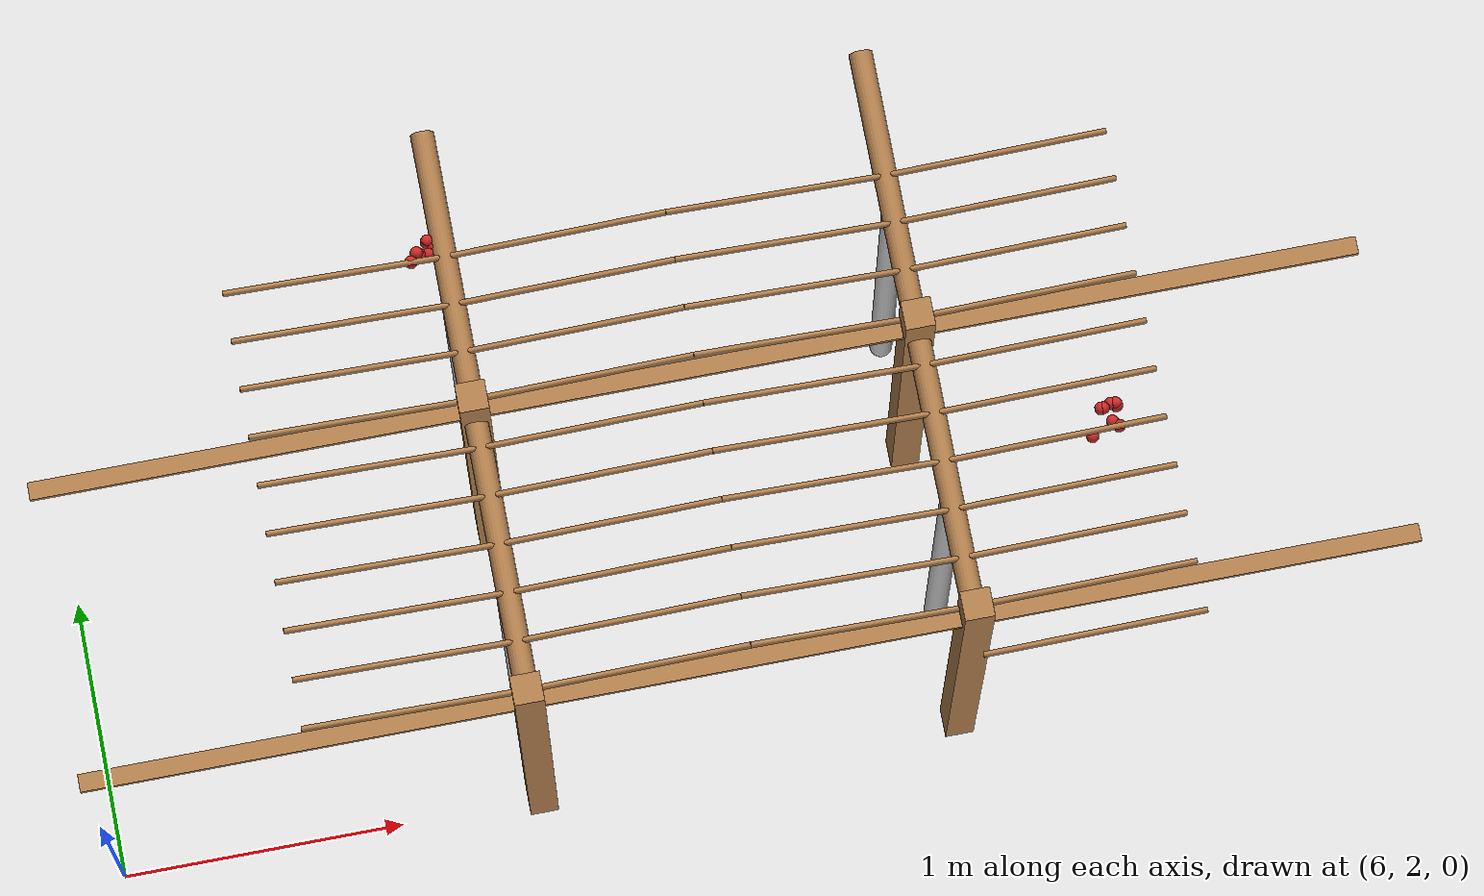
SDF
<sdf version="1.4">
 <model name="pergola">
  <include><name>post_57</name><pose>7.5 2.0 0 0 0 0</pose><uri>model://post</uri></include>
  <include><name>post_58</name><pose>7.5 3.0 0 0 0 0</pose><uri>model://post</uri></include>
  <include><name>post_68</name><pose>9.0 2.0 0 0 0 0</pose><uri>model://post</uri></include>
  <include><name>post_69</name><pose>9.0 3.0 0 0 0 0</pose><uri>model://post</uri></include>
  <link name="beam_46">
   <pose>6.75 2.0 1.81 0 0 0</pose>
   <collision name="collision"><geometry><box><size>1.5 0.06 0.02</size></box></geometry></collision>
   <visual name="visual">
    <geometry><box><size>1.5 0.06 0.02</size></box></geometry>
    <material><script><name>Gazebo/Wood</name></script></material>
   </visual>
   <inertial>
    <mass>5</mass>
    <inertia>
     <ixx>0.0016666666666666668</ixx>
     <ixy>0.0</ixy>
     <ixz>0.0</ixz>
     <iyy>0.9390000000000001</iyy>
     <iyz>0.0</iyz>
     <izz>0.9376666666666665</izz>
    </inertia>
   </inertial>
  </link>
  <link name="beam_47">
   <pose>6.75 3.0 1.81 0 0 0</pose>
   <collision name="collision"><geometry><box><size>1.5 0.06 0.02</size></box></geometry></collision>
   <visual name="visual">
    <geometry><box><size>1.5 0.06 0.02</size></box></geometry>
    <material><script><name>Gazebo/Wood</name></script></material>
   </visual>
   <inertial>
    <mass>5</mass>
    <inertia>
     <ixx>0.0016666666666666668</ixx>
     <ixy>0.0</ixy>
     <ixz>0.0</ixz>
     <iyy>0.9390000000000001</iyy>
     <iyz>0.0</iyz>
     <izz>0.9376666666666665</izz>
    </inertia>
   </inertial>
  </link>
  <link name="beam_57">
   <pose>8.25 2.0 1.81 0 0 0</pose>
   <collision name="collision"><geometry><box><size>1.5 0.06 0.02</size></box></geometry></collision>
   <visual name="visual">
    <geometry><box><size>1.5 0.06 0.02</size></box></geometry>
    <material><script><name>Gazebo/Wood</name></script></material>
   </visual>
   <inertial>
    <mass>5</mass>
    <inertia>
     <ixx>0.0016666666666666668</ixx>
     <ixy>0.0</ixy>
     <ixz>0.0</ixz>
     <iyy>0.9390000000000001</iyy>
     <iyz>0.0</iyz>
     <izz>0.9376666666666665</izz>
    </inertia>
   </inertial>
  </link>
  <link name="beam_58">
   <pose>8.25 3.0 1.81 0 0 0</pose>
   <collision name="collision"><geometry><box><size>1.5 0.06 0.02</size></box></geometry></collision>
   <visual name="visual">
    <geometry><box><size>1.5 0.06 0.02</size></box></geometry>
    <material><script><name>Gazebo/Wood</name></script></material>
   </visual>
   <inertial>
    <mass>5</mass>
    <inertia>
     <ixx>0.0016666666666666668</ixx>
     <ixy>0.0</ixy>
     <ixz>0.0</ixz>
     <iyy>0.9390000000000001</iyy>
     <iyz>0.0</iyz>
     <izz>0.9376666666666665</izz>
    </inertia>
   </inertial>
  </link>
  <link name="beam_68">
   <pose>9.75 2.0 1.81 0 0 0</pose>
   <collision name="collision"><geometry><box><size>1.5 0.06 0.02</size></box></geometry></collision>
   <visual name="visual">
    <geometry><box><size>1.5 0.06 0.02</size></box></geometry>
    <material><script><name>Gazebo/Wood</name></script></material>
   </visual>
   <inertial>
    <mass>5</mass>
    <inertia>
     <ixx>0.0016666666666666668</ixx>
     <ixy>0.0</ixy>
     <ixz>0.0</ixz>
     <iyy>0.9390000000000001</iyy>
     <iyz>0.0</iyz>
     <izz>0.9376666666666665</izz>
    </inertia>
   </inertial>
  </link>
  <link name="beam_69">
   <pose>9.75 3.0 1.81 0 0 0</pose>
   <collision name="collision"><geometry><box><size>1.5 0.06 0.02</size></box></geometry></collision>
   <visual name="visual">
    <geometry><box><size>1.5 0.06 0.02</size></box></geometry>
    <material><script><name>Gazebo/Wood</name></script></material>
   </visual>
   <inertial>
    <mass>5</mass>
    <inertia>
     <ixx>0.0016666666666666668</ixx>
     <ixy>0.0</ixy>
     <ixz>0.0</ixz>
     <iyy>0.9390000000000001</iyy>
     <iyz>0.0</iyz>
     <izz>0.9376666666666665</izz>
    </inertia>
   </inertial>
  </link>
  <include><name>tree_52</name><pose>7.5 2.4 0 0 0 0</pose><uri>model://tree_trunk</uri></include>
  <include><name>tree_53</name><pose>7.5 3.4 0 0 0 0</pose><uri>model://tree_trunk</uri></include>
  <include><name>tree_62</name><pose>9.0 2.4 0 0 0 0</pose><uri>model://tree_trunk</uri></include>
  <include><name>tree_63</name><pose>9.0 3.4 0 0 0 0</pose><uri>model://tree_trunk</uri></include>
  <link name="baseBranch_52">
   <pose>7.5 2.5 1.8 1.5707963267948966 0 0</pose>
   <collision name="collision">
    <geometry><cylinder><radius>0.04</radius><length>0.94</length></cylinder></geometry>
   </collision>
   <visual name="visual">
    <geometry><cylinder><radius>0.04</radius><length>0.94</length></cylinder></geometry>
    <material><script><name>Gazebo/WoodFloor</name></script></material>
   </visual>
   <inertial>
    <mass>10</mass>
    <inertia>
     <ixx>0.7403333333333334</ixx>
     <ixy>0.0</ixy>
     <ixz>0.0</ixz>
     <iyy>0.7403333333333334</iyy>
     <iyz>0.0</iyz>
     <izz>0.008</izz>
    </inertia>
   </inertial>
  </link>
  <link name="baseBranch_53">
   <pose>7.5 3.5 1.8 1.5707963267948966 0 0</pose>
   <collision name="collision">
    <geometry><cylinder><radius>0.04</radius><length>0.94</length></cylinder></geometry>
   </collision>
   <visual name="visual">
    <geometry><cylinder><radius>0.04</radius><length>0.94</length></cylinder></geometry>
    <material><script><name>Gazebo/WoodFloor</name></script></material>
   </visual>
   <inertial>
    <mass>10</mass>
    <inertia>
     <ixx>0.7403333333333334</ixx>
     <ixy>0.0</ixy>
     <ixz>0.0</ixz>
     <iyy>0.7403333333333334</iyy>
     <iyz>0.0</iyz>
     <izz>0.008</izz>
    </inertia>
   </inertial>
  </link>
  <link name="baseBranch_62">
   <pose>9.0 2.5 1.8 1.5707963267948966 0 0</pose>
   <collision name="collision">
    <geometry><cylinder><radius>0.04</radius><length>0.94</length></cylinder></geometry>
   </collision>
   <visual name="visual">
    <geometry><cylinder><radius>0.04</radius><length>0.94</length></cylinder></geometry>
    <material><script><name>Gazebo/WoodFloor</name></script></material>
   </visual>
   <inertial>
    <mass>10</mass>
    <inertia>
     <ixx>0.7403333333333334</ixx>
     <ixy>0.0</ixy>
     <ixz>0.0</ixz>
     <iyy>0.7403333333333334</iyy>
     <iyz>0.0</iyz>
     <izz>0.008</izz>
    </inertia>
   </inertial>
  </link>
  <link name="baseBranch_63">
   <pose>9.0 3.5 1.8 1.5707963267948966 0 0</pose>
   <collision name="collision">
    <geometry><cylinder><radius>0.04</radius><length>0.94</length></cylinder></geometry>
   </collision>
   <visual name="visual">
    <geometry><cylinder><radius>0.04</radius><length>0.94</length></cylinder></geometry>
    <material><script><name>Gazebo/WoodFloor</name></script></material>
   </visual>
   <inertial>
    <mass>10</mass>
    <inertia>
     <ixx>0.7403333333333334</ixx>
     <ixy>0.0</ixy>
     <ixz>0.0</ixz>
     <iyy>0.7403333333333334</iyy>
     <iyz>0.0</iyz>
     <izz>0.008</izz>
    </inertia>
   </inertial>
  </link>
  <link name="vine_505">
   <pose>7.125 2.03 1.85 0 -1.5042281630190728 0</pose>
   <collision name="collision">
    <geometry><cylinder><radius>0.01</radius><length>0.7516648189186453</length></cylinder></geometry>
   </collision>
   <visual name="visual">
    <geometry><cylinder><radius>0.01</radius><length>0.7516648189186453</length></cylinder></geometry>
    <material><script><name>Gazebo/WoodFloor</name></script></material>
   </visual>
   <inertial>
    <mass>5</mass>
    <inertia>
     <ixx>0.23554166666666657</ixx>
     <ixy>0.0</ixy>
     <ixz>0.0</ixz>
     <iyy>0.23554166666666657</iyy>
     <iyz>0.0</iyz>
     <izz>0.00025</izz>
    </inertia>
   </inertial>
  </link>
  <link name="vine_507">
   <pose>7.125 2.1966666666666663 1.85 0 -1.5042281630190728 0</pose>
   <collision name="collision">
    <geometry><cylinder><radius>0.01</radius><length>0.7516648189186453</length></cylinder></geometry>
   </collision>
   <visual name="visual">
    <geometry><cylinder><radius>0.01</radius><length>0.7516648189186453</length></cylinder></geometry>
    <material><script><name>Gazebo/WoodFloor</name></script></material>
   </visual>
   <inertial>
    <mass>5</mass>
    <inertia>
     <ixx>0.23554166666666657</ixx>
     <ixy>0.0</ixy>
     <ixz>0.0</ixz>
     <iyy>0.23554166666666657</iyy>
     <iyz>0.0</iyz>
     <izz>0.00025</izz>
    </inertia>
   </inertial>
  </link>
  <link name="vine_509">
   <pose>7.125 2.363333333333333 1.85 0 -1.5042281630190728 0</pose>
   <collision name="collision">
    <geometry><cylinder><radius>0.01</radius><length>0.7516648189186453</length></cylinder></geometry>
   </collision>
   <visual name="visual">
    <geometry><cylinder><radius>0.01</radius><length>0.7516648189186453</length></cylinder></geometry>
    <material><script><name>Gazebo/WoodFloor</name></script></material>
   </visual>
   <inertial>
    <mass>5</mass>
    <inertia>
     <ixx>0.23554166666666657</ixx>
     <ixy>0.0</ixy>
     <ixz>0.0</ixz>
     <iyy>0.23554166666666657</iyy>
     <iyz>0.0</iyz>
     <izz>0.00025</izz>
    </inertia>
   </inertial>
  </link>
  <link name="vine_511">
   <pose>7.125 2.53 1.85 0 -1.5042281630190728 0</pose>
   <collision name="collision">
    <geometry><cylinder><radius>0.01</radius><length>0.7516648189186453</length></cylinder></geometry>
   </collision>
   <visual name="visual">
    <geometry><cylinder><radius>0.01</radius><length>0.7516648189186453</length></cylinder></geometry>
    <material><script><name>Gazebo/WoodFloor</name></script></material>
   </visual>
   <inertial>
    <mass>5</mass>
    <inertia>
     <ixx>0.23554166666666657</ixx>
     <ixy>0.0</ixy>
     <ixz>0.0</ixz>
     <iyy>0.23554166666666657</iyy>
     <iyz>0.0</iyz>
     <izz>0.00025</izz>
    </inertia>
   </inertial>
  </link>
  <link name="vine_513">
   <pose>7.125 2.6966666666666663 1.85 0 -1.5042281630190728 0</pose>
   <collision name="collision">
    <geometry><cylinder><radius>0.01</radius><length>0.7516648189186453</length></cylinder></geometry>
   </collision>
   <visual name="visual">
    <geometry><cylinder><radius>0.01</radius><length>0.7516648189186453</length></cylinder></geometry>
    <material><script><name>Gazebo/WoodFloor</name></script></material>
   </visual>
   <inertial>
    <mass>5</mass>
    <inertia>
     <ixx>0.23554166666666657</ixx>
     <ixy>0.0</ixy>
     <ixz>0.0</ixz>
     <iyy>0.23554166666666657</iyy>
     <iyz>0.0</iyz>
     <izz>0.00025</izz>
    </inertia>
   </inertial>
  </link>
  <link name="vine_515">
   <pose>7.125 2.863333333333333 1.85 0 -1.5042281630190728 0</pose>
   <collision name="collision">
    <geometry><cylinder><radius>0.01</radius><length>0.7516648189186453</length></cylinder></geometry>
   </collision>
   <visual name="visual">
    <geometry><cylinder><radius>0.01</radius><length>0.7516648189186453</length></cylinder></geometry>
    <material><script><name>Gazebo/WoodFloor</name></script></material>
   </visual>
   <inertial>
    <mass>5</mass>
    <inertia>
     <ixx>0.23554166666666657</ixx>
     <ixy>0.0</ixy>
     <ixz>0.0</ixz>
     <iyy>0.23554166666666657</iyy>
     <iyz>0.0</iyz>
     <izz>0.00025</izz>
    </inertia>
   </inertial>
  </link>
  <link name="vine_517">
   <pose>7.125 3.03 1.85 0 -1.5042281630190728 0</pose>
   <collision name="collision">
    <geometry><cylinder><radius>0.01</radius><length>0.7516648189186453</length></cylinder></geometry>
   </collision>
   <visual name="visual">
    <geometry><cylinder><radius>0.01</radius><length>0.7516648189186453</length></cylinder></geometry>
    <material><script><name>Gazebo/WoodFloor</name></script></material>
   </visual>
   <inertial>
    <mass>5</mass>
    <inertia>
     <ixx>0.23554166666666657</ixx>
     <ixy>0.0</ixy>
     <ixz>0.0</ixz>
     <iyy>0.23554166666666657</iyy>
     <iyz>0.0</iyz>
     <izz>0.00025</izz>
    </inertia>
   </inertial>
  </link>
  <link name="vine_519">
   <pose>7.125 3.1966666666666663 1.85 0 -1.5042281630190728 0</pose>
   <collision name="collision">
    <geometry><cylinder><radius>0.01</radius><length>0.7516648189186453</length></cylinder></geometry>
   </collision>
   <visual name="visual">
    <geometry><cylinder><radius>0.01</radius><length>0.7516648189186453</length></cylinder></geometry>
    <material><script><name>Gazebo/WoodFloor</name></script></material>
   </visual>
   <inertial>
    <mass>5</mass>
    <inertia>
     <ixx>0.23554166666666657</ixx>
     <ixy>0.0</ixy>
     <ixz>0.0</ixz>
     <iyy>0.23554166666666657</iyy>
     <iyz>0.0</iyz>
     <izz>0.00025</izz>
    </inertia>
   </inertial>
  </link>
  <link name="vine_521">
   <pose>7.125 3.363333333333333 1.85 0 -1.5042281630190728 0</pose>
   <collision name="collision">
    <geometry><cylinder><radius>0.01</radius><length>0.7516648189186453</length></cylinder></geometry>
   </collision>
   <visual name="visual">
    <geometry><cylinder><radius>0.01</radius><length>0.7516648189186453</length></cylinder></geometry>
    <material><script><name>Gazebo/WoodFloor</name></script></material>
   </visual>
   <inertial>
    <mass>5</mass>
    <inertia>
     <ixx>0.23554166666666657</ixx>
     <ixy>0.0</ixy>
     <ixz>0.0</ixz>
     <iyy>0.23554166666666657</iyy>
     <iyz>0.0</iyz>
     <izz>0.00025</izz>
    </inertia>
   </inertial>
  </link>
  <link name="vine_523">
   <pose>7.125 3.53 1.85 0 -1.5042281630190728 0</pose>
   <collision name="collision">
    <geometry><cylinder><radius>0.01</radius><length>0.7516648189186453</length></cylinder></geometry>
   </collision>
   <visual name="visual">
    <geometry><cylinder><radius>0.01</radius><length>0.7516648189186453</length></cylinder></geometry>
    <material><script><name>Gazebo/WoodFloor</name></script></material>
   </visual>
   <inertial>
    <mass>5</mass>
    <inertia>
     <ixx>0.23554166666666657</ixx>
     <ixy>0.0</ixy>
     <ixz>0.0</ixz>
     <iyy>0.23554166666666657</iyy>
     <iyz>0.0</iyz>
     <izz>0.00025</izz>
    </inertia>
   </inertial>
  </link>
  <link name="vine_624">
   <pose>7.875 2.03 1.85 0 1.5042281630190728 0</pose>
   <collision name="collision">
    <geometry><cylinder><radius>0.01</radius><length>0.7516648189186453</length></cylinder></geometry>
   </collision>
   <visual name="visual">
    <geometry><cylinder><radius>0.01</radius><length>0.7516648189186453</length></cylinder></geometry>
    <material><script><name>Gazebo/WoodFloor</name></script></material>
   </visual>
   <inertial>
    <mass>5</mass>
    <inertia>
     <ixx>0.23554166666666657</ixx>
     <ixy>0.0</ixy>
     <ixz>0.0</ixz>
     <iyy>0.23554166666666657</iyy>
     <iyz>0.0</iyz>
     <izz>0.00025</izz>
    </inertia>
   </inertial>
  </link>
  <link name="vine_625">
   <pose>8.625 2.03 1.85 0 -1.5042281630190728 0</pose>
   <collision name="collision">
    <geometry><cylinder><radius>0.01</radius><length>0.7516648189186453</length></cylinder></geometry>
   </collision>
   <visual name="visual">
    <geometry><cylinder><radius>0.01</radius><length>0.7516648189186453</length></cylinder></geometry>
    <material><script><name>Gazebo/WoodFloor</name></script></material>
   </visual>
   <inertial>
    <mass>5</mass>
    <inertia>
     <ixx>0.23554166666666657</ixx>
     <ixy>0.0</ixy>
     <ixz>0.0</ixz>
     <iyy>0.23554166666666657</iyy>
     <iyz>0.0</iyz>
     <izz>0.00025</izz>
    </inertia>
   </inertial>
  </link>
  <link name="vine_626">
   <pose>7.875 2.1966666666666663 1.85 0 1.5042281630190728 0</pose>
   <collision name="collision">
    <geometry><cylinder><radius>0.01</radius><length>0.7516648189186453</length></cylinder></geometry>
   </collision>
   <visual name="visual">
    <geometry><cylinder><radius>0.01</radius><length>0.7516648189186453</length></cylinder></geometry>
    <material><script><name>Gazebo/WoodFloor</name></script></material>
   </visual>
   <inertial>
    <mass>5</mass>
    <inertia>
     <ixx>0.23554166666666657</ixx>
     <ixy>0.0</ixy>
     <ixz>0.0</ixz>
     <iyy>0.23554166666666657</iyy>
     <iyz>0.0</iyz>
     <izz>0.00025</izz>
    </inertia>
   </inertial>
  </link>
  <link name="vine_627">
   <pose>8.625 2.1966666666666663 1.85 0 -1.5042281630190728 0</pose>
   <collision name="collision">
    <geometry><cylinder><radius>0.01</radius><length>0.7516648189186453</length></cylinder></geometry>
   </collision>
   <visual name="visual">
    <geometry><cylinder><radius>0.01</radius><length>0.7516648189186453</length></cylinder></geometry>
    <material><script><name>Gazebo/WoodFloor</name></script></material>
   </visual>
   <inertial>
    <mass>5</mass>
    <inertia>
     <ixx>0.23554166666666657</ixx>
     <ixy>0.0</ixy>
     <ixz>0.0</ixz>
     <iyy>0.23554166666666657</iyy>
     <iyz>0.0</iyz>
     <izz>0.00025</izz>
    </inertia>
   </inertial>
  </link>
  <link name="vine_628">
   <pose>7.875 2.363333333333333 1.85 0 1.5042281630190728 0</pose>
   <collision name="collision">
    <geometry><cylinder><radius>0.01</radius><length>0.7516648189186453</length></cylinder></geometry>
   </collision>
   <visual name="visual">
    <geometry><cylinder><radius>0.01</radius><length>0.7516648189186453</length></cylinder></geometry>
    <material><script><name>Gazebo/WoodFloor</name></script></material>
   </visual>
   <inertial>
    <mass>5</mass>
    <inertia>
     <ixx>0.23554166666666657</ixx>
     <ixy>0.0</ixy>
     <ixz>0.0</ixz>
     <iyy>0.23554166666666657</iyy>
     <iyz>0.0</iyz>
     <izz>0.00025</izz>
    </inertia>
   </inertial>
  </link>
  <link name="vine_629">
   <pose>8.625 2.363333333333333 1.85 0 -1.5042281630190728 0</pose>
   <collision name="collision">
    <geometry><cylinder><radius>0.01</radius><length>0.7516648189186453</length></cylinder></geometry>
   </collision>
   <visual name="visual">
    <geometry><cylinder><radius>0.01</radius><length>0.7516648189186453</length></cylinder></geometry>
    <material><script><name>Gazebo/WoodFloor</name></script></material>
   </visual>
   <inertial>
    <mass>5</mass>
    <inertia>
     <ixx>0.23554166666666657</ixx>
     <ixy>0.0</ixy>
     <ixz>0.0</ixz>
     <iyy>0.23554166666666657</iyy>
     <iyz>0.0</iyz>
     <izz>0.00025</izz>
    </inertia>
   </inertial>
  </link>
  <link name="vine_630">
   <pose>7.875 2.53 1.85 0 1.5042281630190728 0</pose>
   <collision name="collision">
    <geometry><cylinder><radius>0.01</radius><length>0.7516648189186453</length></cylinder></geometry>
   </collision>
   <visual name="visual">
    <geometry><cylinder><radius>0.01</radius><length>0.7516648189186453</length></cylinder></geometry>
    <material><script><name>Gazebo/WoodFloor</name></script></material>
   </visual>
   <inertial>
    <mass>5</mass>
    <inertia>
     <ixx>0.23554166666666657</ixx>
     <ixy>0.0</ixy>
     <ixz>0.0</ixz>
     <iyy>0.23554166666666657</iyy>
     <iyz>0.0</iyz>
     <izz>0.00025</izz>
    </inertia>
   </inertial>
  </link>
  <link name="vine_631">
   <pose>8.625 2.53 1.85 0 -1.5042281630190728 0</pose>
   <collision name="collision">
    <geometry><cylinder><radius>0.01</radius><length>0.7516648189186453</length></cylinder></geometry>
   </collision>
   <visual name="visual">
    <geometry><cylinder><radius>0.01</radius><length>0.7516648189186453</length></cylinder></geometry>
    <material><script><name>Gazebo/WoodFloor</name></script></material>
   </visual>
   <inertial>
    <mass>5</mass>
    <inertia>
     <ixx>0.23554166666666657</ixx>
     <ixy>0.0</ixy>
     <ixz>0.0</ixz>
     <iyy>0.23554166666666657</iyy>
     <iyz>0.0</iyz>
     <izz>0.00025</izz>
    </inertia>
   </inertial>
  </link>
  <link name="vine_632">
   <pose>7.875 2.6966666666666663 1.85 0 1.5042281630190728 0</pose>
   <collision name="collision">
    <geometry><cylinder><radius>0.01</radius><length>0.7516648189186453</length></cylinder></geometry>
   </collision>
   <visual name="visual">
    <geometry><cylinder><radius>0.01</radius><length>0.7516648189186453</length></cylinder></geometry>
    <material><script><name>Gazebo/WoodFloor</name></script></material>
   </visual>
   <inertial>
    <mass>5</mass>
    <inertia>
     <ixx>0.23554166666666657</ixx>
     <ixy>0.0</ixy>
     <ixz>0.0</ixz>
     <iyy>0.23554166666666657</iyy>
     <iyz>0.0</iyz>
     <izz>0.00025</izz>
    </inertia>
   </inertial>
  </link>
  <link name="vine_633">
   <pose>8.625 2.6966666666666663 1.85 0 -1.5042281630190728 0</pose>
   <collision name="collision">
    <geometry><cylinder><radius>0.01</radius><length>0.7516648189186453</length></cylinder></geometry>
   </collision>
   <visual name="visual">
    <geometry><cylinder><radius>0.01</radius><length>0.7516648189186453</length></cylinder></geometry>
    <material><script><name>Gazebo/WoodFloor</name></script></material>
   </visual>
   <inertial>
    <mass>5</mass>
    <inertia>
     <ixx>0.23554166666666657</ixx>
     <ixy>0.0</ixy>
     <ixz>0.0</ixz>
     <iyy>0.23554166666666657</iyy>
     <iyz>0.0</iyz>
     <izz>0.00025</izz>
    </inertia>
   </inertial>
  </link>
  <link name="vine_634">
   <pose>7.875 2.863333333333333 1.85 0 1.5042281630190728 0</pose>
   <collision name="collision">
    <geometry><cylinder><radius>0.01</radius><length>0.7516648189186453</length></cylinder></geometry>
   </collision>
   <visual name="visual">
    <geometry><cylinder><radius>0.01</radius><length>0.7516648189186453</length></cylinder></geometry>
    <material><script><name>Gazebo/WoodFloor</name></script></material>
   </visual>
   <inertial>
    <mass>5</mass>
    <inertia>
     <ixx>0.23554166666666657</ixx>
     <ixy>0.0</ixy>
     <ixz>0.0</ixz>
     <iyy>0.23554166666666657</iyy>
     <iyz>0.0</iyz>
     <izz>0.00025</izz>
    </inertia>
   </inertial>
  </link>
  <link name="vine_635">
   <pose>8.625 2.863333333333333 1.85 0 -1.5042281630190728 0</pose>
   <collision name="collision">
    <geometry><cylinder><radius>0.01</radius><length>0.7516648189186453</length></cylinder></geometry>
   </collision>
   <visual name="visual">
    <geometry><cylinder><radius>0.01</radius><length>0.7516648189186453</length></cylinder></geometry>
    <material><script><name>Gazebo/WoodFloor</name></script></material>
   </visual>
   <inertial>
    <mass>5</mass>
    <inertia>
     <ixx>0.23554166666666657</ixx>
     <ixy>0.0</ixy>
     <ixz>0.0</ixz>
     <iyy>0.23554166666666657</iyy>
     <iyz>0.0</iyz>
     <izz>0.00025</izz>
    </inertia>
   </inertial>
  </link>
  <link name="vine_636">
   <pose>7.875 3.03 1.85 0 1.5042281630190728 0</pose>
   <collision name="collision">
    <geometry><cylinder><radius>0.01</radius><length>0.7516648189186453</length></cylinder></geometry>
   </collision>
   <visual name="visual">
    <geometry><cylinder><radius>0.01</radius><length>0.7516648189186453</length></cylinder></geometry>
    <material><script><name>Gazebo/WoodFloor</name></script></material>
   </visual>
   <inertial>
    <mass>5</mass>
    <inertia>
     <ixx>0.23554166666666657</ixx>
     <ixy>0.0</ixy>
     <ixz>0.0</ixz>
     <iyy>0.23554166666666657</iyy>
     <iyz>0.0</iyz>
     <izz>0.00025</izz>
    </inertia>
   </inertial>
  </link>
  <link name="vine_637">
   <pose>8.625 3.03 1.85 0 -1.5042281630190728 0</pose>
   <collision name="collision">
    <geometry><cylinder><radius>0.01</radius><length>0.7516648189186453</length></cylinder></geometry>
   </collision>
   <visual name="visual">
    <geometry><cylinder><radius>0.01</radius><length>0.7516648189186453</length></cylinder></geometry>
    <material><script><name>Gazebo/WoodFloor</name></script></material>
   </visual>
   <inertial>
    <mass>5</mass>
    <inertia>
     <ixx>0.23554166666666657</ixx>
     <ixy>0.0</ixy>
     <ixz>0.0</ixz>
     <iyy>0.23554166666666657</iyy>
     <iyz>0.0</iyz>
     <izz>0.00025</izz>
    </inertia>
   </inertial>
  </link>
  <link name="vine_638">
   <pose>7.875 3.1966666666666663 1.85 0 1.5042281630190728 0</pose>
   <collision name="collision">
    <geometry><cylinder><radius>0.01</radius><length>0.7516648189186453</length></cylinder></geometry>
   </collision>
   <visual name="visual">
    <geometry><cylinder><radius>0.01</radius><length>0.7516648189186453</length></cylinder></geometry>
    <material><script><name>Gazebo/WoodFloor</name></script></material>
   </visual>
   <inertial>
    <mass>5</mass>
    <inertia>
     <ixx>0.23554166666666657</ixx>
     <ixy>0.0</ixy>
     <ixz>0.0</ixz>
     <iyy>0.23554166666666657</iyy>
     <iyz>0.0</iyz>
     <izz>0.00025</izz>
    </inertia>
   </inertial>
  </link>
  <link name="vine_639">
   <pose>8.625 3.1966666666666663 1.85 0 -1.5042281630190728 0</pose>
   <collision name="collision">
    <geometry><cylinder><radius>0.01</radius><length>0.7516648189186453</length></cylinder></geometry>
   </collision>
   <visual name="visual">
    <geometry><cylinder><radius>0.01</radius><length>0.7516648189186453</length></cylinder></geometry>
    <material><script><name>Gazebo/WoodFloor</name></script></material>
   </visual>
   <inertial>
    <mass>5</mass>
    <inertia>
     <ixx>0.23554166666666657</ixx>
     <ixy>0.0</ixy>
     <ixz>0.0</ixz>
     <iyy>0.23554166666666657</iyy>
     <iyz>0.0</iyz>
     <izz>0.00025</izz>
    </inertia>
   </inertial>
  </link>
  <link name="vine_640">
   <pose>7.875 3.363333333333333 1.85 0 1.5042281630190728 0</pose>
   <collision name="collision">
    <geometry><cylinder><radius>0.01</radius><length>0.7516648189186453</length></cylinder></geometry>
   </collision>
   <visual name="visual">
    <geometry><cylinder><radius>0.01</radius><length>0.7516648189186453</length></cylinder></geometry>
    <material><script><name>Gazebo/WoodFloor</name></script></material>
   </visual>
   <inertial>
    <mass>5</mass>
    <inertia>
     <ixx>0.23554166666666657</ixx>
     <ixy>0.0</ixy>
     <ixz>0.0</ixz>
     <iyy>0.23554166666666657</iyy>
     <iyz>0.0</iyz>
     <izz>0.00025</izz>
    </inertia>
   </inertial>
  </link>
  <link name="vine_641">
   <pose>8.625 3.363333333333333 1.85 0 -1.5042281630190728 0</pose>
   <collision name="collision">
    <geometry><cylinder><radius>0.01</radius><length>0.7516648189186453</length></cylinder></geometry>
   </collision>
   <visual name="visual">
    <geometry><cylinder><radius>0.01</radius><length>0.7516648189186453</length></cylinder></geometry>
    <material><script><name>Gazebo/WoodFloor</name></script></material>
   </visual>
   <inertial>
    <mass>5</mass>
    <inertia>
     <ixx>0.23554166666666657</ixx>
     <ixy>0.0</ixy>
     <ixz>0.0</ixz>
     <iyy>0.23554166666666657</iyy>
     <iyz>0.0</iyz>
     <izz>0.00025</izz>
    </inertia>
   </inertial>
  </link>
  <link name="vine_642">
   <pose>7.875 3.53 1.85 0 1.5042281630190728 0</pose>
   <collision name="collision">
    <geometry><cylinder><radius>0.01</radius><length>0.7516648189186453</length></cylinder></geometry>
   </collision>
   <visual name="visual">
    <geometry><cylinder><radius>0.01</radius><length>0.7516648189186453</length></cylinder></geometry>
    <material><script><name>Gazebo/WoodFloor</name></script></material>
   </visual>
   <inertial>
    <mass>5</mass>
    <inertia>
     <ixx>0.23554166666666657</ixx>
     <ixy>0.0</ixy>
     <ixz>0.0</ixz>
     <iyy>0.23554166666666657</iyy>
     <iyz>0.0</iyz>
     <izz>0.00025</izz>
    </inertia>
   </inertial>
  </link>
  <link name="vine_643">
   <pose>8.625 3.53 1.85 0 -1.5042281630190728 0</pose>
   <collision name="collision">
    <geometry><cylinder><radius>0.01</radius><length>0.7516648189186453</length></cylinder></geometry>
   </collision>
   <visual name="visual">
    <geometry><cylinder><radius>0.01</radius><length>0.7516648189186453</length></cylinder></geometry>
    <material><script><name>Gazebo/WoodFloor</name></script></material>
   </visual>
   <inertial>
    <mass>5</mass>
    <inertia>
     <ixx>0.23554166666666657</ixx>
     <ixy>0.0</ixy>
     <ixz>0.0</ixz>
     <iyy>0.23554166666666657</iyy>
     <iyz>0.0</iyz>
     <izz>0.00025</izz>
    </inertia>
   </inertial>
  </link>
  <link name="vine_742">
   <pose>9.375 1.8633333333333333 1.85 0 1.5042281630190728 0</pose>
   <collision name="collision">
    <geometry><cylinder><radius>0.01</radius><length>0.7516648189186453</length></cylinder></geometry>
   </collision>
   <visual name="visual">
    <geometry><cylinder><radius>0.01</radius><length>0.7516648189186453</length></cylinder></geometry>
    <material><script><name>Gazebo/WoodFloor</name></script></material>
   </visual>
   <inertial>
    <mass>5</mass>
    <inertia>
     <ixx>0.23554166666666657</ixx>
     <ixy>0.0</ixy>
     <ixz>0.0</ixz>
     <iyy>0.23554166666666657</iyy>
     <iyz>0.0</iyz>
     <izz>0.00025</izz>
    </inertia>
   </inertial>
  </link>
  <link name="vine_744">
   <pose>9.375 2.03 1.85 0 1.5042281630190728 0</pose>
   <collision name="collision">
    <geometry><cylinder><radius>0.01</radius><length>0.7516648189186453</length></cylinder></geometry>
   </collision>
   <visual name="visual">
    <geometry><cylinder><radius>0.01</radius><length>0.7516648189186453</length></cylinder></geometry>
    <material><script><name>Gazebo/WoodFloor</name></script></material>
   </visual>
   <inertial>
    <mass>5</mass>
    <inertia>
     <ixx>0.23554166666666657</ixx>
     <ixy>0.0</ixy>
     <ixz>0.0</ixz>
     <iyy>0.23554166666666657</iyy>
     <iyz>0.0</iyz>
     <izz>0.00025</izz>
    </inertia>
   </inertial>
  </link>
  <link name="vine_746">
   <pose>9.375 2.1966666666666663 1.85 0 1.5042281630190728 0</pose>
   <collision name="collision">
    <geometry><cylinder><radius>0.01</radius><length>0.7516648189186453</length></cylinder></geometry>
   </collision>
   <visual name="visual">
    <geometry><cylinder><radius>0.01</radius><length>0.7516648189186453</length></cylinder></geometry>
    <material><script><name>Gazebo/WoodFloor</name></script></material>
   </visual>
   <inertial>
    <mass>5</mass>
    <inertia>
     <ixx>0.23554166666666657</ixx>
     <ixy>0.0</ixy>
     <ixz>0.0</ixz>
     <iyy>0.23554166666666657</iyy>
     <iyz>0.0</iyz>
     <izz>0.00025</izz>
    </inertia>
   </inertial>
  </link>
  <link name="vine_748">
   <pose>9.375 2.363333333333333 1.85 0 1.5042281630190728 0</pose>
   <collision name="collision">
    <geometry><cylinder><radius>0.01</radius><length>0.7516648189186453</length></cylinder></geometry>
   </collision>
   <visual name="visual">
    <geometry><cylinder><radius>0.01</radius><length>0.7516648189186453</length></cylinder></geometry>
    <material><script><name>Gazebo/WoodFloor</name></script></material>
   </visual>
   <inertial>
    <mass>5</mass>
    <inertia>
     <ixx>0.23554166666666657</ixx>
     <ixy>0.0</ixy>
     <ixz>0.0</ixz>
     <iyy>0.23554166666666657</iyy>
     <iyz>0.0</iyz>
     <izz>0.00025</izz>
    </inertia>
   </inertial>
  </link>
  <link name="vine_750">
   <pose>9.375 2.53 1.85 0 1.5042281630190728 0</pose>
   <collision name="collision">
    <geometry><cylinder><radius>0.01</radius><length>0.7516648189186453</length></cylinder></geometry>
   </collision>
   <visual name="visual">
    <geometry><cylinder><radius>0.01</radius><length>0.7516648189186453</length></cylinder></geometry>
    <material><script><name>Gazebo/WoodFloor</name></script></material>
   </visual>
   <inertial>
    <mass>5</mass>
    <inertia>
     <ixx>0.23554166666666657</ixx>
     <ixy>0.0</ixy>
     <ixz>0.0</ixz>
     <iyy>0.23554166666666657</iyy>
     <iyz>0.0</iyz>
     <izz>0.00025</izz>
    </inertia>
   </inertial>
  </link>
  <link name="vine_752">
   <pose>9.375 2.6966666666666663 1.85 0 1.5042281630190728 0</pose>
   <collision name="collision">
    <geometry><cylinder><radius>0.01</radius><length>0.7516648189186453</length></cylinder></geometry>
   </collision>
   <visual name="visual">
    <geometry><cylinder><radius>0.01</radius><length>0.7516648189186453</length></cylinder></geometry>
    <material><script><name>Gazebo/WoodFloor</name></script></material>
   </visual>
   <inertial>
    <mass>5</mass>
    <inertia>
     <ixx>0.23554166666666657</ixx>
     <ixy>0.0</ixy>
     <ixz>0.0</ixz>
     <iyy>0.23554166666666657</iyy>
     <iyz>0.0</iyz>
     <izz>0.00025</izz>
    </inertia>
   </inertial>
  </link>
  <link name="vine_754">
   <pose>9.375 2.863333333333333 1.85 0 1.5042281630190728 0</pose>
   <collision name="collision">
    <geometry><cylinder><radius>0.01</radius><length>0.7516648189186453</length></cylinder></geometry>
   </collision>
   <visual name="visual">
    <geometry><cylinder><radius>0.01</radius><length>0.7516648189186453</length></cylinder></geometry>
    <material><script><name>Gazebo/WoodFloor</name></script></material>
   </visual>
   <inertial>
    <mass>5</mass>
    <inertia>
     <ixx>0.23554166666666657</ixx>
     <ixy>0.0</ixy>
     <ixz>0.0</ixz>
     <iyy>0.23554166666666657</iyy>
     <iyz>0.0</iyz>
     <izz>0.00025</izz>
    </inertia>
   </inertial>
  </link>
  <link name="vine_756">
   <pose>9.375 3.03 1.85 0 1.5042281630190728 0</pose>
   <collision name="collision">
    <geometry><cylinder><radius>0.01</radius><length>0.7516648189186453</length></cylinder></geometry>
   </collision>
   <visual name="visual">
    <geometry><cylinder><radius>0.01</radius><length>0.7516648189186453</length></cylinder></geometry>
    <material><script><name>Gazebo/WoodFloor</name></script></material>
   </visual>
   <inertial>
    <mass>5</mass>
    <inertia>
     <ixx>0.23554166666666657</ixx>
     <ixy>0.0</ixy>
     <ixz>0.0</ixz>
     <iyy>0.23554166666666657</iyy>
     <iyz>0.0</iyz>
     <izz>0.00025</izz>
    </inertia>
   </inertial>
  </link>
  <link name="vine_758">
   <pose>9.375 3.1966666666666663 1.85 0 1.5042281630190728 0</pose>
   <collision name="collision">
    <geometry><cylinder><radius>0.01</radius><length>0.7516648189186453</length></cylinder></geometry>
   </collision>
   <visual name="visual">
    <geometry><cylinder><radius>0.01</radius><length>0.7516648189186453</length></cylinder></geometry>
    <material><script><name>Gazebo/WoodFloor</name></script></material>
   </visual>
   <inertial>
    <mass>5</mass>
    <inertia>
     <ixx>0.23554166666666657</ixx>
     <ixy>0.0</ixy>
     <ixz>0.0</ixz>
     <iyy>0.23554166666666657</iyy>
     <iyz>0.0</iyz>
     <izz>0.00025</izz>
    </inertia>
   </inertial>
  </link>
  <link name="vine_760">
   <pose>9.375 3.363333333333333 1.85 0 1.5042281630190728 0</pose>
   <collision name="collision">
    <geometry><cylinder><radius>0.01</radius><length>0.7516648189186453</length></cylinder></geometry>
   </collision>
   <visual name="visual">
    <geometry><cylinder><radius>0.01</radius><length>0.7516648189186453</length></cylinder></geometry>
    <material><script><name>Gazebo/WoodFloor</name></script></material>
   </visual>
   <inertial>
    <mass>5</mass>
    <inertia>
     <ixx>0.23554166666666657</ixx>
     <ixy>0.0</ixy>
     <ixz>0.0</ixz>
     <iyy>0.23554166666666657</iyy>
     <iyz>0.0</iyz>
     <izz>0.00025</izz>
    </inertia>
   </inertial>
  </link>
  <link name="vine_762">
   <pose>9.375 3.53 1.85 0 1.5042281630190728 0</pose>
   <collision name="collision">
    <geometry><cylinder><radius>0.01</radius><length>0.7516648189186453</length></cylinder></geometry>
   </collision>
   <visual name="visual">
    <geometry><cylinder><radius>0.01</radius><length>0.7516648189186453</length></cylinder></geometry>
    <material><script><name>Gazebo/WoodFloor</name></script></material>
   </visual>
   <inertial>
    <mass>5</mass>
    <inertia>
     <ixx>0.23554166666666657</ixx>
     <ixy>0.0</ixy>
     <ixz>0.0</ixz>
     <iyy>0.23554166666666657</iyy>
     <iyz>0.0</iyz>
     <izz>0.00025</izz>
    </inertia>
   </inertial>
  </link>
  <link name="fruit_12">
   <pose>7.386136675661051 3.534701240528242 1.8203645106738888 0 0 0</pose>
   <collision name="fruit_collision_12"><geometry><sphere><radius>0.022</radius></sphere></geometry></collision>
   <visual name="visual">
    <geometry><sphere><radius>0.022</radius></sphere></geometry>
    <material><script><name>Gazebo/Red</name></script></material>
   </visual>
   <inertial>
    <mass>0.05</mass>
    <inertia>
     <ixx>9.679999999999999e-06</ixx>
     <ixy>0.0</ixy>
     <ixz>0.0</ixz>
     <iyy>9.679999999999999e-06</iyy>
     <iyz>0.0</iyz>
     <izz>9.679999999999999e-06</izz>
    </inertia>
   </inertial>
   <sensor name="fruit_contact_12" type="contact">
    <contact><collision>fruit_collision_12</collision></contact>
   </sensor>
  </link>
  <link name="fruit_46">
   <pose>9.52284216077896 2.568394073349437 1.6092427193461254 0 0 0</pose>
   <collision name="fruit_collision_46"><geometry><sphere><radius>0.022</radius></sphere></geometry></collision>
   <visual name="visual">
    <geometry><sphere><radius>0.022</radius></sphere></geometry>
    <material><script><name>Gazebo/Red</name></script></material>
   </visual>
   <inertial>
    <mass>0.05</mass>
    <inertia>
     <ixx>9.679999999999999e-06</ixx>
     <ixy>0.0</ixy>
     <ixz>0.0</ixz>
     <iyy>9.679999999999999e-06</iyy>
     <iyz>0.0</iyz>
     <izz>9.679999999999999e-06</izz>
    </inertia>
   </inertial>
   <sensor name="fruit_contact_46" type="contact">
    <contact><collision>fruit_collision_46</collision></contact>
   </sensor>
  </link>
  <link name="fruit_202">
   <pose>9.607054291660832 2.6723650815824427 1.5912703115261 0 0 0</pose>
   <collision name="fruit_collision_202"><geometry><sphere><radius>0.022</radius></sphere></geometry></collision>
   <visual name="visual">
    <geometry><sphere><radius>0.022</radius></sphere></geometry>
    <material><script><name>Gazebo/Red</name></script></material>
   </visual>
   <inertial>
    <mass>0.05</mass>
    <inertia>
     <ixx>9.679999999999999e-06</ixx>
     <ixy>0.0</ixy>
     <ixz>0.0</ixz>
     <iyy>9.679999999999999e-06</iyy>
     <iyz>0.0</iyz>
     <izz>9.679999999999999e-06</izz>
    </inertia>
   </inertial>
   <sensor name="fruit_contact_202" type="contact">
    <contact><collision>fruit_collision_202</collision></contact>
   </sensor>
  </link>
  <link name="fruit_203">
   <pose>9.624354592729418 2.662525553296962 1.587330563920645 0 0 0</pose>
   <collision name="fruit_collision_203"><geometry><sphere><radius>0.022</radius></sphere></geometry></collision>
   <visual name="visual">
    <geometry><sphere><radius>0.022</radius></sphere></geometry>
    <material><script><name>Gazebo/Red</name></script></material>
   </visual>
   <inertial>
    <mass>0.05</mass>
    <inertia>
     <ixx>9.679999999999999e-06</ixx>
     <ixy>0.0</ixy>
     <ixz>0.0</ixz>
     <iyy>9.679999999999999e-06</iyy>
     <iyz>0.0</iyz>
     <izz>9.679999999999999e-06</izz>
    </inertia>
   </inertial>
   <sensor name="fruit_contact_203" type="contact">
    <contact><collision>fruit_collision_203</collision></contact>
   </sensor>
  </link>
  <link name="fruit_238">
   <pose>7.413024029709884 3.563214395773613 1.7989855599222393 0 0 0</pose>
   <collision name="fruit_collision_238"><geometry><sphere><radius>0.022</radius></sphere></geometry></collision>
   <visual name="visual">
    <geometry><sphere><radius>0.022</radius></sphere></geometry>
    <material><script><name>Gazebo/Red</name></script></material>
   </visual>
   <inertial>
    <mass>0.05</mass>
    <inertia>
     <ixx>9.679999999999999e-06</ixx>
     <ixy>0.0</ixy>
     <ixz>0.0</ixz>
     <iyy>9.679999999999999e-06</iyy>
     <iyz>0.0</iyz>
     <izz>9.679999999999999e-06</izz>
    </inertia>
   </inertial>
   <sensor name="fruit_contact_238" type="contact">
    <contact><collision>fruit_collision_238</collision></contact>
   </sensor>
  </link>
  <link name="fruit_270">
   <pose>7.418131556457942 3.558812385363637 1.804394027517387 0 0 0</pose>
   <collision name="fruit_collision_270"><geometry><sphere><radius>0.022</radius></sphere></geometry></collision>
   <visual name="visual">
    <geometry><sphere><radius>0.022</radius></sphere></geometry>
    <material><script><name>Gazebo/Red</name></script></material>
   </visual>
   <inertial>
    <mass>0.05</mass>
    <inertia>
     <ixx>9.679999999999999e-06</ixx>
     <ixy>0.0</ixy>
     <ixz>0.0</ixz>
     <iyy>9.679999999999999e-06</iyy>
     <iyz>0.0</iyz>
     <izz>9.679999999999999e-06</izz>
    </inertia>
   </inertial>
   <sensor name="fruit_contact_270" type="contact">
    <contact><collision>fruit_collision_270</collision></contact>
   </sensor>
  </link>
  <link name="fruit_340">
   <pose>9.619497150890364 2.5908582505102578 1.5938866831020033 0 0 0</pose>
   <collision name="fruit_collision_340"><geometry><sphere><radius>0.022</radius></sphere></geometry></collision>
   <visual name="visual">
    <geometry><sphere><radius>0.022</radius></sphere></geometry>
    <material><script><name>Gazebo/Red</name></script></material>
   </visual>
   <inertial>
    <mass>0.05</mass>
    <inertia>
     <ixx>9.679999999999999e-06</ixx>
     <ixy>0.0</ixy>
     <ixz>0.0</ixz>
     <iyy>9.679999999999999e-06</iyy>
     <iyz>0.0</iyz>
     <izz>9.679999999999999e-06</izz>
    </inertia>
   </inertial>
   <sensor name="fruit_contact_340" type="contact">
    <contact><collision>fruit_collision_340</collision></contact>
   </sensor>
  </link>
  <link name="fruit_345">
   <pose>7.44874372042897 3.5973017019494113 1.805332870105782 0 0 0</pose>
   <collision name="fruit_collision_345"><geometry><sphere><radius>0.022</radius></sphere></geometry></collision>
   <visual name="visual">
    <geometry><sphere><radius>0.022</radius></sphere></geometry>
    <material><script><name>Gazebo/Red</name></script></material>
   </visual>
   <inertial>
    <mass>0.05</mass>
    <inertia>
     <ixx>9.679999999999999e-06</ixx>
     <ixy>0.0</ixy>
     <ixz>0.0</ixz>
     <iyy>9.679999999999999e-06</iyy>
     <iyz>0.0</iyz>
     <izz>9.679999999999999e-06</izz>
    </inertia>
   </inertial>
   <sensor name="fruit_contact_345" type="contact">
    <contact><collision>fruit_collision_345</collision></contact>
   </sensor>
  </link>
  <link name="fruit_353">
   <pose>7.451000879043119 3.5997092591495443 1.8091329530128206 0 0 0</pose>
   <collision name="fruit_collision_353"><geometry><sphere><radius>0.022</radius></sphere></geometry></collision>
   <visual name="visual">
    <geometry><sphere><radius>0.022</radius></sphere></geometry>
    <material><script><name>Gazebo/Red</name></script></material>
   </visual>
   <inertial>
    <mass>0.05</mass>
    <inertia>
     <ixx>9.679999999999999e-06</ixx>
     <ixy>0.0</ixy>
     <ixz>0.0</ixz>
     <iyy>9.679999999999999e-06</iyy>
     <iyz>0.0</iyz>
     <izz>9.679999999999999e-06</izz>
    </inertia>
   </inertial>
   <sensor name="fruit_contact_353" type="contact">
    <contact><collision>fruit_collision_353</collision></contact>
   </sensor>
  </link>
  <link name="fruit_354">
   <pose>9.6226532017129 2.669782251874204 1.5941955766544578 0 0 0</pose>
   <collision name="fruit_collision_354"><geometry><sphere><radius>0.022</radius></sphere></geometry></collision>
   <visual name="visual">
    <geometry><sphere><radius>0.022</radius></sphere></geometry>
    <material><script><name>Gazebo/Red</name></script></material>
   </visual>
   <inertial>
    <mass>0.05</mass>
    <inertia>
     <ixx>9.679999999999999e-06</ixx>
     <ixy>0.0</ixy>
     <ixz>0.0</ixz>
     <iyy>9.679999999999999e-06</iyy>
     <iyz>0.0</iyz>
     <izz>9.679999999999999e-06</izz>
    </inertia>
   </inertial>
   <sensor name="fruit_contact_354" type="contact">
    <contact><collision>fruit_collision_354</collision></contact>
   </sensor>
  </link>
  <link name="fruit_379">
   <pose>9.569657152900032 2.6583118715883414 1.6071290751694522 0 0 0</pose>
   <collision name="fruit_collision_379"><geometry><sphere><radius>0.022</radius></sphere></geometry></collision>
   <visual name="visual">
    <geometry><sphere><radius>0.022</radius></sphere></geometry>
    <material><script><name>Gazebo/Red</name></script></material>
   </visual>
   <inertial>
    <mass>0.05</mass>
    <inertia>
     <ixx>9.679999999999999e-06</ixx>
     <ixy>0.0</ixy>
     <ixz>0.0</ixz>
     <iyy>9.679999999999999e-06</iyy>
     <iyz>0.0</iyz>
     <izz>9.679999999999999e-06</izz>
    </inertia>
   </inertial>
   <sensor name="fruit_contact_379" type="contact">
    <contact><collision>fruit_collision_379</collision></contact>
   </sensor>
  </link>
  <link name="fruit_407">
   <pose>7.449388709546371 3.556837431659183 1.8001056821185415 0 0 0</pose>
   <collision name="fruit_collision_407"><geometry><sphere><radius>0.022</radius></sphere></geometry></collision>
   <visual name="visual">
    <geometry><sphere><radius>0.022</radius></sphere></geometry>
    <material><script><name>Gazebo/Red</name></script></material>
   </visual>
   <inertial>
    <mass>0.05</mass>
    <inertia>
     <ixx>9.679999999999999e-06</ixx>
     <ixy>0.0</ixy>
     <ixz>0.0</ixz>
     <iyy>9.679999999999999e-06</iyy>
     <iyz>0.0</iyz>
     <izz>9.679999999999999e-06</izz>
    </inertia>
   </inertial>
   <sensor name="fruit_contact_407" type="contact">
    <contact><collision>fruit_collision_407</collision></contact>
   </sensor>
  </link>
  <link name="fruit_429">
   <pose>7.464844248855976 3.58287850450819 1.799579328250035 0 0 0</pose>
   <collision name="fruit_collision_429"><geometry><sphere><radius>0.022</radius></sphere></geometry></collision>
   <visual name="visual">
    <geometry><sphere><radius>0.022</radius></sphere></geometry>
    <material><script><name>Gazebo/Red</name></script></material>
   </visual>
   <inertial>
    <mass>0.05</mass>
    <inertia>
     <ixx>9.679999999999999e-06</ixx>
     <ixy>0.0</ixy>
     <ixz>0.0</ixz>
     <iyy>9.679999999999999e-06</iyy>
     <iyz>0.0</iyz>
     <izz>9.679999999999999e-06</izz>
    </inertia>
   </inertial>
   <sensor name="fruit_contact_429" type="contact">
    <contact><collision>fruit_collision_429</collision></contact>
   </sensor>
  </link>
  <link name="fruit_430">
   <pose>9.60049764815449 2.610647048030697 1.5903443513076165 0 0 0</pose>
   <collision name="fruit_collision_430"><geometry><sphere><radius>0.022</radius></sphere></geometry></collision>
   <visual name="visual">
    <geometry><sphere><radius>0.022</radius></sphere></geometry>
    <material><script><name>Gazebo/Red</name></script></material>
   </visual>
   <inertial>
    <mass>0.05</mass>
    <inertia>
     <ixx>9.679999999999999e-06</ixx>
     <ixy>0.0</ixy>
     <ixz>0.0</ixz>
     <iyy>9.679999999999999e-06</iyy>
     <iyz>0.0</iyz>
     <izz>9.679999999999999e-06</izz>
    </inertia>
   </inertial>
   <sensor name="fruit_contact_430" type="contact">
    <contact><collision>fruit_collision_430</collision></contact>
   </sensor>
  </link>
  <link name="fruit_434">
   <pose>9.576737460241274 2.6576904574719844 1.6073924445587389 0 0 0</pose>
   <collision name="fruit_collision_434"><geometry><sphere><radius>0.022</radius></sphere></geometry></collision>
   <visual name="visual">
    <geometry><sphere><radius>0.022</radius></sphere></geometry>
    <material><script><name>Gazebo/Red</name></script></material>
   </visual>
   <inertial>
    <mass>0.05</mass>
    <inertia>
     <ixx>9.679999999999999e-06</ixx>
     <ixy>0.0</ixy>
     <ixz>0.0</ixz>
     <iyy>9.679999999999999e-06</iyy>
     <iyz>0.0</iyz>
     <izz>9.679999999999999e-06</izz>
    </inertia>
   </inertial>
   <sensor name="fruit_contact_434" type="contact">
    <contact><collision>fruit_collision_434</collision></contact>
   </sensor>
  </link>
  <link name="fruit_480">
   <pose>7.4085726781613515 3.5621468469500193 1.8197963463325402 0 0 0</pose>
   <collision name="fruit_collision_480"><geometry><sphere><radius>0.022</radius></sphere></geometry></collision>
   <visual name="visual">
    <geometry><sphere><radius>0.022</radius></sphere></geometry>
    <material><script><name>Gazebo/Red</name></script></material>
   </visual>
   <inertial>
    <mass>0.05</mass>
    <inertia>
     <ixx>9.679999999999999e-06</ixx>
     <ixy>0.0</ixy>
     <ixz>0.0</ixz>
     <iyy>9.679999999999999e-06</iyy>
     <iyz>0.0</iyz>
     <izz>9.679999999999999e-06</izz>
    </inertia>
   </inertial>
   <sensor name="fruit_contact_480" type="contact">
    <contact><collision>fruit_collision_480</collision></contact>
   </sensor>
  </link>
 </model>
</sdf>
